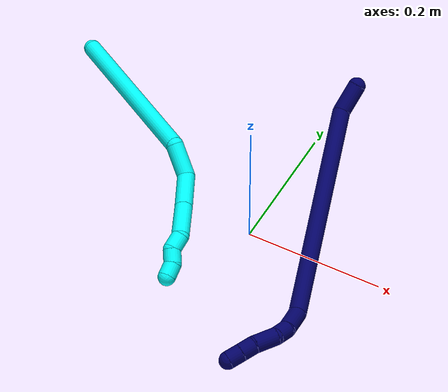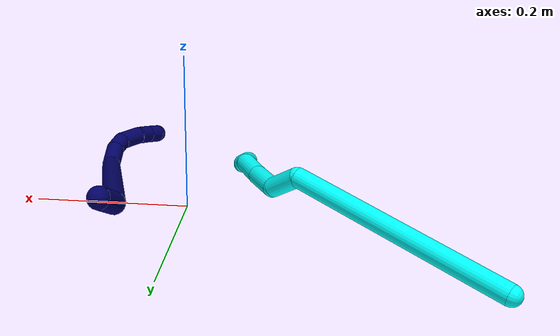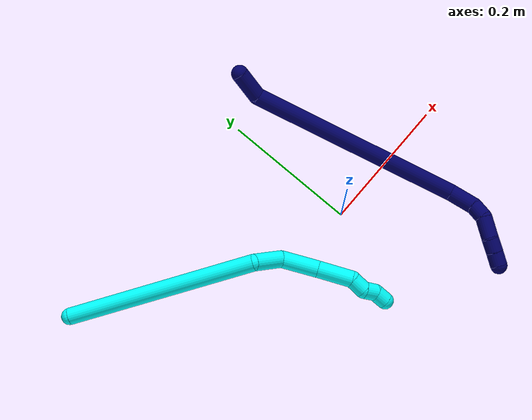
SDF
<sdf version="1.7">
 <world name="default">
  <model name="3">
   <static>0</static>
   <link name="3">
    <collision name="collision-cylinder-e_1_1_4">
     <pose>0.00477 -0.004207 -0.141288 3.11183 0.033732 1.69556</pose>
     <geometry><cylinder><radius>0.0125</radius><length>0.282862</length></cylinder></geometry>
     <surface>
      <friction><ode><mu>1.16</mu><mu2>1.16</mu2><slip1>0</slip1><slip2>0</slip2></ode></friction>
      <contact><ode><kp>1e+06</kp><kd>1</kd><max_vel>0</max_vel><min_depth>0.001</min_depth></ode></contact>
     </surface>
    </collision>
    <visual name="visual-cylinder-e_1_1_4">
     <pose>0.00477 -0.004207 -0.141288 3.11183 0.033732 1.69556</pose>
     <geometry><cylinder><radius>0.0125</radius><length>0.282862</length></cylinder></geometry>
     <material><ambient>0.003922 1 0.996078 1</ambient></material>
    </visual>
    <collision name="collision-cylinder-e_2_4_5">
     <pose>-0.001239 -0.020375 -0.299661 2.53081 -0.477003 -1.31388</pose>
     <geometry><cylinder><radius>0.0125</radius><length>0.046952</length></cylinder></geometry>
     <surface>
      <friction><ode><mu>1.16</mu><mu2>1.16</mu2><slip1>0</slip1><slip2>0</slip2></ode></friction>
      <contact><ode><kp>1e+06</kp><kd>1</kd><max_vel>0</max_vel><min_depth>0.001</min_depth></ode></contact>
     </surface>
    </collision>
    <visual name="visual-cylinder-e_2_4_5">
     <pose>-0.001239 -0.020375 -0.299661 2.53081 -0.477003 -1.31388</pose>
     <geometry><cylinder><radius>0.0125</radius><length>0.046952</length></cylinder></geometry>
     <material><ambient>0.003922 1 0.996078 1</ambient></material>
    </visual>
    <collision name="collision-cylinder-e_3_5_6">
     <pose>-0.006947 -0.047542 -0.338999 2.54212 0.185948 0.586053</pose>
     <geometry><cylinder><radius>0.0125</radius><length>0.05485</length></cylinder></geometry>
     <surface>
      <friction><ode><mu>1.16</mu><mu2>1.16</mu2><slip1>0</slip1><slip2>0</slip2></ode></friction>
      <contact><ode><kp>1e+06</kp><kd>1</kd><max_vel>0</max_vel><min_depth>0.001</min_depth></ode></contact>
     </surface>
    </collision>
    <visual name="visual-cylinder-e_3_5_6">
     <pose>-0.006947 -0.047542 -0.338999 2.54212 0.185948 0.586053</pose>
     <geometry><cylinder><radius>0.0125</radius><length>0.05485</length></cylinder></geometry>
     <material><ambient>0.003922 1 0.996078 1</ambient></material>
    </visual>
    <collision name="collision-cylinder-e_4_6_7">
     <pose>0.003996 -0.076927 -0.382306 2.54894 0.227357 0.715682</pose>
     <geometry><cylinder><radius>0.0125</radius><length>0.052108</length></cylinder></geometry>
     <surface>
      <friction><ode><mu>1.16</mu><mu2>1.16</mu2><slip1>0</slip1><slip2>0</slip2></ode></friction>
      <contact><ode><kp>1e+06</kp><kd>1</kd><max_vel>0</max_vel><min_depth>0.001</min_depth></ode></contact>
     </surface>
    </collision>
    <visual name="visual-cylinder-e_4_6_7">
     <pose>0.003996 -0.076927 -0.382306 2.54894 0.227357 0.715682</pose>
     <geometry><cylinder><radius>0.0125</radius><length>0.052108</length></cylinder></geometry>
     <material><ambient>0.003922 1 0.996078 1</ambient></material>
    </visual>
    <collision name="collision-cylinder-e_5_7_8">
     <pose>0.013233 -0.100929 -0.40828 2.0351 0.297129 0.475519</pose>
     <geometry><cylinder><radius>0.0125</radius><length>0.02298</length></cylinder></geometry>
     <surface>
      <friction><ode><mu>1.16</mu><mu2>1.16</mu2><slip1>0</slip1><slip2>0</slip2></ode></friction>
      <contact><ode><kp>1e+06</kp><kd>1</kd><max_vel>0</max_vel><min_depth>0.001</min_depth></ode></contact>
     </surface>
    </collision>
    <visual name="visual-cylinder-e_5_7_8">
     <pose>0.013233 -0.100929 -0.40828 2.0351 0.297129 0.475519</pose>
     <geometry><cylinder><radius>0.0125</radius><length>0.02298</length></cylinder></geometry>
     <material><ambient>0.003922 1 0.996078 1</ambient></material>
    </visual>
    <collision name="collision-cylinder-e_6_8_9">
     <pose>0.014395 -0.117766 -0.420088 2.34716 -0.220321 -0.51558</pose>
     <geometry><cylinder><radius>0.0125</radius><length>0.020148</length></cylinder></geometry>
     <surface>
      <friction><ode><mu>1.16</mu><mu2>1.16</mu2><slip1>0</slip1><slip2>0</slip2></ode></friction>
      <contact><ode><kp>1e+06</kp><kd>1</kd><max_vel>0</max_vel><min_depth>0.001</min_depth></ode></contact>
     </surface>
    </collision>
    <visual name="visual-cylinder-e_6_8_9">
     <pose>0.014395 -0.117766 -0.420088 2.34716 -0.220321 -0.51558</pose>
     <geometry><cylinder><radius>0.0125</radius><length>0.020148</length></cylinder></geometry>
     <material><ambient>0.003922 1 0.996078 1</ambient></material>
    </visual>
    <collision name="collision-cylinder-e_7_9_2">
     <pose>0.013644 -0.133647 -0.431477 2.04051 0.144822 0.235246</pose>
     <geometry><cylinder><radius>0.0125</radius><length>0.0201</length></cylinder></geometry>
     <surface>
      <friction><ode><mu>1.16</mu><mu2>1.16</mu2><slip1>0</slip1><slip2>0</slip2></ode></friction>
      <contact><ode><kp>1e+06</kp><kd>1</kd><max_vel>0</max_vel><min_depth>0.001</min_depth></ode></contact>
     </surface>
    </collision>
    <visual name="visual-cylinder-e_7_9_2">
     <pose>0.013644 -0.133647 -0.431477 2.04051 0.144822 0.235246</pose>
     <geometry><cylinder><radius>0.0125</radius><length>0.0201</length></cylinder></geometry>
     <material><ambient>0.003922 1 0.996078 1</ambient></material>
    </visual>
    <collision name="collision-sphere-2">
     <pose>0.015094 -0.142515 -0.435978 0 -0 0</pose>
     <geometry><sphere><radius>0.0125</radius></sphere></geometry>
     <surface>
      <friction><ode><mu>1.16</mu><mu2>1.16</mu2><slip1>0</slip1><slip2>0</slip2></ode></friction>
      <contact><ode><kp>1e+06</kp><kd>1</kd><max_vel>0</max_vel><min_depth>0.001</min_depth></ode></contact>
     </surface>
    </collision>
    <visual name="visual-sphere-2">
     <pose>0.015094 -0.142515 -0.435978 0 -0 0</pose>
     <geometry><sphere><radius>0.0125</radius></sphere></geometry>
     <material><ambient>0.003922 1 0.996078 1</ambient></material>
    </visual>
    <collision name="collision-sphere-9">
     <pose>0.012194 -0.12478 -0.426976 0 -0 0</pose>
     <geometry><sphere><radius>0.0125</radius></sphere></geometry>
     <surface>
      <friction><ode><mu>1.16</mu><mu2>1.16</mu2><slip1>0</slip1><slip2>0</slip2></ode></friction>
      <contact><ode><kp>1e+06</kp><kd>1</kd><max_vel>0</max_vel><min_depth>0.001</min_depth></ode></contact>
     </surface>
    </collision>
    <visual name="visual-sphere-9">
     <pose>0.012194 -0.12478 -0.426976 0 -0 0</pose>
     <geometry><sphere><radius>0.0125</radius></sphere></geometry>
     <material><ambient>0.003922 1 0.996078 1</ambient></material>
    </visual>
    <collision name="collision-sphere-4">
     <pose>0.00954 -0.008414 -0.282576 0 -0 0</pose>
     <geometry><sphere><radius>0.0125</radius></sphere></geometry>
     <surface>
      <friction><ode><mu>1.16</mu><mu2>1.16</mu2><slip1>0</slip1><slip2>0</slip2></ode></friction>
      <contact><ode><kp>1e+06</kp><kd>1</kd><max_vel>0</max_vel><min_depth>0.001</min_depth></ode></contact>
     </surface>
    </collision>
    <visual name="visual-sphere-4">
     <pose>0.00954 -0.008414 -0.282576 0 -0 0</pose>
     <geometry><sphere><radius>0.0125</radius></sphere></geometry>
     <material><ambient>0.003922 1 0.996078 1</ambient></material>
    </visual>
    <collision name="collision-sphere-1">
     <geometry><sphere><radius>0.0125</radius></sphere></geometry>
     <surface>
      <friction><ode><mu>1.16</mu><mu2>1.16</mu2><slip1>0</slip1><slip2>0</slip2></ode></friction>
      <contact><ode><kp>1e+06</kp><kd>1</kd><max_vel>0</max_vel><min_depth>0.001</min_depth></ode></contact>
     </surface>
    </collision>
    <visual name="visual-sphere-1">
     <geometry><sphere><radius>0.0125</radius></sphere></geometry>
     <material><ambient>0.003922 1 0.996078 1</ambient></material>
    </visual>
    <collision name="collision-sphere-8">
     <pose>0.016597 -0.110752 -0.4132 0 -0 0</pose>
     <geometry><sphere><radius>0.0125</radius></sphere></geometry>
     <surface>
      <friction><ode><mu>1.16</mu><mu2>1.16</mu2><slip1>0</slip1><slip2>0</slip2></ode></friction>
      <contact><ode><kp>1e+06</kp><kd>1</kd><max_vel>0</max_vel><min_depth>0.001</min_depth></ode></contact>
     </surface>
    </collision>
    <visual name="visual-sphere-8">
     <pose>0.016597 -0.110752 -0.4132 0 -0 0</pose>
     <geometry><sphere><radius>0.0125</radius></sphere></geometry>
     <material><ambient>0.003922 1 0.996078 1</ambient></material>
    </visual>
    <collision name="collision-sphere-5">
     <pose>-0.012017 -0.032336 -0.316746 0 -0 0</pose>
     <geometry><sphere><radius>0.0125</radius></sphere></geometry>
     <surface>
      <friction><ode><mu>1.16</mu><mu2>1.16</mu2><slip1>0</slip1><slip2>0</slip2></ode></friction>
      <contact><ode><kp>1e+06</kp><kd>1</kd><max_vel>0</max_vel><min_depth>0.001</min_depth></ode></contact>
     </surface>
    </collision>
    <visual name="visual-sphere-5">
     <pose>-0.012017 -0.032336 -0.316746 0 -0 0</pose>
     <geometry><sphere><radius>0.0125</radius></sphere></geometry>
     <material><ambient>0.003922 1 0.996078 1</ambient></material>
    </visual>
    <collision name="collision-sphere-6">
     <pose>-0.001877 -0.062749 -0.361251 0 -0 0</pose>
     <geometry><sphere><radius>0.0125</radius></sphere></geometry>
     <surface>
      <friction><ode><mu>1.16</mu><mu2>1.16</mu2><slip1>0</slip1><slip2>0</slip2></ode></friction>
      <contact><ode><kp>1e+06</kp><kd>1</kd><max_vel>0</max_vel><min_depth>0.001</min_depth></ode></contact>
     </surface>
    </collision>
    <visual name="visual-sphere-6">
     <pose>-0.001877 -0.062749 -0.361251 0 -0 0</pose>
     <geometry><sphere><radius>0.0125</radius></sphere></geometry>
     <material><ambient>0.003922 1 0.996078 1</ambient></material>
    </visual>
    <collision name="collision-sphere-7">
     <pose>0.009869 -0.091106 -0.40336 0 -0 0</pose>
     <geometry><sphere><radius>0.0125</radius></sphere></geometry>
     <surface>
      <friction><ode><mu>1.16</mu><mu2>1.16</mu2><slip1>0</slip1><slip2>0</slip2></ode></friction>
      <contact><ode><kp>1e+06</kp><kd>1</kd><max_vel>0</max_vel><min_depth>0.001</min_depth></ode></contact>
     </surface>
    </collision>
    <visual name="visual-sphere-7">
     <pose>0.009869 -0.091106 -0.40336 0 -0 0</pose>
     <geometry><sphere><radius>0.0125</radius></sphere></geometry>
     <material><ambient>0.003922 1 0.996078 1</ambient></material>
    </visual>
    <inertial>
     <pose>0.003973 -0.032282 -0.238138 0 -0 0</pose>
     <mass>0.5</mass>
     <inertia>
      <ixx>0.001685</ixx>
      <ixy>0</ixy>
      <ixz>0</ixz>
      <iyy>0.002098</iyy>
      <iyz>0</iyz>
      <izz>-1.8e-05</izz>
     </inertia>
    </inertial>
   </link>
   <pose>-0.371182 0.203934 0.01195 1.84983 -0.822362 -2.34022</pose>
  </model>
  <model name="7">
   <static>0</static>
   <link name="7">
    <collision name="collision-cylinder-e_1_1_4">
     <pose>-0.001095 -0.020803 -0.003788 1.75092 -0.051739 -0.062006</pose>
     <geometry><cylinder><radius>0.0125</radius><length>0.042348</length></cylinder></geometry>
     <surface>
      <friction><ode><mu>1.16</mu><mu2>1.16</mu2><slip1>0</slip1><slip2>0</slip2></ode></friction>
      <contact><ode><kp>1e+06</kp><kd>1</kd><max_vel>0</max_vel><min_depth>0.001</min_depth></ode></contact>
     </surface>
    </collision>
    <visual name="visual-cylinder-e_1_1_4">
     <pose>-0.001095 -0.020803 -0.003788 1.75092 -0.051739 -0.062006</pose>
     <geometry><cylinder><radius>0.0125</radius><length>0.042348</length></cylinder></geometry>
     <material><ambient>0.003922 0 0.403922 1</ambient></material>
    </visual>
    <collision name="collision-cylinder-e_2_4_5">
     <pose>0.044744 -0.193185 0.016594 1.41267 0.296744 0.25368</pose>
     <geometry><cylinder><radius>0.0125</radius><length>0.321017</length></cylinder></geometry>
     <surface>
      <friction><ode><mu>1.16</mu><mu2>1.16</mu2><slip1>0</slip1><slip2>0</slip2></ode></friction>
      <contact><ode><kp>1e+06</kp><kd>1</kd><max_vel>0</max_vel><min_depth>0.001</min_depth></ode></contact>
     </surface>
    </collision>
    <visual name="visual-cylinder-e_2_4_5">
     <pose>0.044744 -0.193185 0.016594 1.41267 0.296744 0.25368</pose>
     <geometry><cylinder><radius>0.0125</radius><length>0.321017</length></cylinder></geometry>
     <material><ambient>0.003922 0 0.403922 1</ambient></material>
    </visual>
    <collision name="collision-cylinder-e_3_5_6">
     <pose>0.092367 -0.360979 0.052495 0.944522 0.034404 0.017575</pose>
     <geometry><cylinder><radius>0.0125</radius><length>0.040053</length></cylinder></geometry>
     <surface>
      <friction><ode><mu>1.16</mu><mu2>1.16</mu2><slip1>0</slip1><slip2>0</slip2></ode></friction>
      <contact><ode><kp>1e+06</kp><kd>1</kd><max_vel>0</max_vel><min_depth>0.001</min_depth></ode></contact>
     </surface>
    </collision>
    <visual name="visual-cylinder-e_3_5_6">
     <pose>0.092367 -0.360979 0.052495 0.944522 0.034404 0.017575</pose>
     <geometry><cylinder><radius>0.0125</radius><length>0.040053</length></cylinder></geometry>
     <material><ambient>0.003922 0 0.403922 1</ambient></material>
    </visual>
    <collision name="collision-cylinder-e_4_6_7">
     <pose>0.090063 -0.386324 0.069982 1.00826 -0.270505 -0.149867</pose>
     <geometry><cylinder><radius>0.0125</radius><length>0.022396</length></cylinder></geometry>
     <surface>
      <friction><ode><mu>1.16</mu><mu2>1.16</mu2><slip1>0</slip1><slip2>0</slip2></ode></friction>
      <contact><ode><kp>1e+06</kp><kd>1</kd><max_vel>0</max_vel><min_depth>0.001</min_depth></ode></contact>
     </surface>
    </collision>
    <visual name="visual-cylinder-e_4_6_7">
     <pose>0.090063 -0.386324 0.069982 1.00826 -0.270505 -0.149867</pose>
     <geometry><cylinder><radius>0.0125</radius><length>0.022396</length></cylinder></geometry>
     <material><ambient>0.003922 0 0.403922 1</ambient></material>
    </visual>
    <collision name="collision-cylinder-e_5_7_8">
     <pose>0.077625 -0.408478 0.079153 1.3143 -0.611679 -0.477919</pose>
     <geometry><cylinder><radius>0.0125</radius><length>0.032899</length></cylinder></geometry>
     <surface>
      <friction><ode><mu>1.16</mu><mu2>1.16</mu2><slip1>0</slip1><slip2>0</slip2></ode></friction>
      <contact><ode><kp>1e+06</kp><kd>1</kd><max_vel>0</max_vel><min_depth>0.001</min_depth></ode></contact>
     </surface>
    </collision>
    <visual name="visual-cylinder-e_5_7_8">
     <pose>0.077625 -0.408478 0.079153 1.3143 -0.611679 -0.477919</pose>
     <geometry><cylinder><radius>0.0125</radius><length>0.032899</length></cylinder></geometry>
     <material><ambient>0.003922 0 0.403922 1</ambient></material>
    </visual>
    <collision name="collision-cylinder-e_6_8_9">
     <pose>0.063188 -0.430566 0.083074 1.51524 -0.502778 -0.476638</pose>
     <geometry><cylinder><radius>0.0125</radius><length>0.020715</length></cylinder></geometry>
     <surface>
      <friction><ode><mu>1.16</mu><mu2>1.16</mu2><slip1>0</slip1><slip2>0</slip2></ode></friction>
      <contact><ode><kp>1e+06</kp><kd>1</kd><max_vel>0</max_vel><min_depth>0.001</min_depth></ode></contact>
     </surface>
    </collision>
    <visual name="visual-cylinder-e_6_8_9">
     <pose>0.063188 -0.430566 0.083074 1.51524 -0.502778 -0.476638</pose>
     <geometry><cylinder><radius>0.0125</radius><length>0.020715</length></cylinder></geometry>
     <material><ambient>0.003922 0 0.403922 1</ambient></material>
    </visual>
    <collision name="collision-cylinder-e_7_9_2">
     <pose>0.053107 -0.44856 0.083894 1.53543 -0.517739 -0.500498</pose>
     <geometry><cylinder><radius>0.0125</radius><length>0.020572</length></cylinder></geometry>
     <surface>
      <friction><ode><mu>1.16</mu><mu2>1.16</mu2><slip1>0</slip1><slip2>0</slip2></ode></friction>
      <contact><ode><kp>1e+06</kp><kd>1</kd><max_vel>0</max_vel><min_depth>0.001</min_depth></ode></contact>
     </surface>
    </collision>
    <visual name="visual-cylinder-e_7_9_2">
     <pose>0.053107 -0.44856 0.083894 1.53543 -0.517739 -0.500498</pose>
     <geometry><cylinder><radius>0.0125</radius><length>0.020572</length></cylinder></geometry>
     <material><ambient>0.003922 0 0.403922 1</ambient></material>
    </visual>
    <collision name="collision-sphere-2">
     <pose>0.048016 -0.457493 0.08421 0 -0 0</pose>
     <geometry><sphere><radius>0.0125</radius></sphere></geometry>
     <surface>
      <friction><ode><mu>1.16</mu><mu2>1.16</mu2><slip1>0</slip1><slip2>0</slip2></ode></friction>
      <contact><ode><kp>1e+06</kp><kd>1</kd><max_vel>0</max_vel><min_depth>0.001</min_depth></ode></contact>
     </surface>
    </collision>
    <visual name="visual-sphere-2">
     <pose>0.048016 -0.457493 0.08421 0 -0 0</pose>
     <geometry><sphere><radius>0.0125</radius></sphere></geometry>
     <material><ambient>0.003922 0 0.403922 1</ambient></material>
    </visual>
    <collision name="collision-sphere-9">
     <pose>0.058197 -0.439628 0.083578 0 -0 0</pose>
     <geometry><sphere><radius>0.0125</radius></sphere></geometry>
     <surface>
      <friction><ode><mu>1.16</mu><mu2>1.16</mu2><slip1>0</slip1><slip2>0</slip2></ode></friction>
      <contact><ode><kp>1e+06</kp><kd>1</kd><max_vel>0</max_vel><min_depth>0.001</min_depth></ode></contact>
     </surface>
    </collision>
    <visual name="visual-sphere-9">
     <pose>0.058197 -0.439628 0.083578 0 -0 0</pose>
     <geometry><sphere><radius>0.0125</radius></sphere></geometry>
     <material><ambient>0.003922 0 0.403922 1</ambient></material>
    </visual>
    <collision name="collision-sphere-4">
     <pose>-0.00219 -0.041607 -0.007577 0 -0 0</pose>
     <geometry><sphere><radius>0.0125</radius></sphere></geometry>
     <surface>
      <friction><ode><mu>1.16</mu><mu2>1.16</mu2><slip1>0</slip1><slip2>0</slip2></ode></friction>
      <contact><ode><kp>1e+06</kp><kd>1</kd><max_vel>0</max_vel><min_depth>0.001</min_depth></ode></contact>
     </surface>
    </collision>
    <visual name="visual-sphere-4">
     <pose>-0.00219 -0.041607 -0.007577 0 -0 0</pose>
     <geometry><sphere><radius>0.0125</radius></sphere></geometry>
     <material><ambient>0.003922 0 0.403922 1</ambient></material>
    </visual>
    <collision name="collision-sphere-1">
     <geometry><sphere><radius>0.0125</radius></sphere></geometry>
     <surface>
      <friction><ode><mu>1.16</mu><mu2>1.16</mu2><slip1>0</slip1><slip2>0</slip2></ode></friction>
      <contact><ode><kp>1e+06</kp><kd>1</kd><max_vel>0</max_vel><min_depth>0.001</min_depth></ode></contact>
     </surface>
    </collision>
    <visual name="visual-sphere-1">
     <geometry><sphere><radius>0.0125</radius></sphere></geometry>
     <material><ambient>0.003922 0 0.403922 1</ambient></material>
    </visual>
    <collision name="collision-sphere-8">
     <pose>0.068179 -0.421504 0.08257 0 -0 0</pose>
     <geometry><sphere><radius>0.0125</radius></sphere></geometry>
     <surface>
      <friction><ode><mu>1.16</mu><mu2>1.16</mu2><slip1>0</slip1><slip2>0</slip2></ode></friction>
      <contact><ode><kp>1e+06</kp><kd>1</kd><max_vel>0</max_vel><min_depth>0.001</min_depth></ode></contact>
     </surface>
    </collision>
    <visual name="visual-sphere-8">
     <pose>0.068179 -0.421504 0.08257 0 -0 0</pose>
     <geometry><sphere><radius>0.0125</radius></sphere></geometry>
     <material><ambient>0.003922 0 0.403922 1</ambient></material>
    </visual>
    <collision name="collision-sphere-5">
     <pose>0.091678 -0.344763 0.040764 0 -0 0</pose>
     <geometry><sphere><radius>0.0125</radius></sphere></geometry>
     <surface>
      <friction><ode><mu>1.16</mu><mu2>1.16</mu2><slip1>0</slip1><slip2>0</slip2></ode></friction>
      <contact><ode><kp>1e+06</kp><kd>1</kd><max_vel>0</max_vel><min_depth>0.001</min_depth></ode></contact>
     </surface>
    </collision>
    <visual name="visual-sphere-5">
     <pose>0.091678 -0.344763 0.040764 0 -0 0</pose>
     <geometry><sphere><radius>0.0125</radius></sphere></geometry>
     <material><ambient>0.003922 0 0.403922 1</ambient></material>
    </visual>
    <collision name="collision-sphere-6">
     <pose>0.093056 -0.377195 0.064227 0 -0 0</pose>
     <geometry><sphere><radius>0.0125</radius></sphere></geometry>
     <surface>
      <friction><ode><mu>1.16</mu><mu2>1.16</mu2><slip1>0</slip1><slip2>0</slip2></ode></friction>
      <contact><ode><kp>1e+06</kp><kd>1</kd><max_vel>0</max_vel><min_depth>0.001</min_depth></ode></contact>
     </surface>
    </collision>
    <visual name="visual-sphere-6">
     <pose>0.093056 -0.377195 0.064227 0 -0 0</pose>
     <geometry><sphere><radius>0.0125</radius></sphere></geometry>
     <material><ambient>0.003922 0 0.403922 1</ambient></material>
    </visual>
    <collision name="collision-sphere-7">
     <pose>0.087071 -0.395452 0.075737 0 -0 0</pose>
     <geometry><sphere><radius>0.0125</radius></sphere></geometry>
     <surface>
      <friction><ode><mu>1.16</mu><mu2>1.16</mu2><slip1>0</slip1><slip2>0</slip2></ode></friction>
      <contact><ode><kp>1e+06</kp><kd>1</kd><max_vel>0</max_vel><min_depth>0.001</min_depth></ode></contact>
     </surface>
    </collision>
    <visual name="visual-sphere-7">
     <pose>0.087071 -0.395452 0.075737 0 -0 0</pose>
     <geometry><sphere><radius>0.0125</radius></sphere></geometry>
     <material><ambient>0.003922 0 0.403922 1</ambient></material>
    </visual>
    <inertial>
     <pose>0.049978 -0.235185 0.029774 0 -0 0</pose>
     <mass>0.5</mass>
     <inertia>
      <ixx>0.00325</ixx>
      <ixy>0</ixy>
      <ixz>0</ixz>
      <iyy>0.001255</iyy>
      <iyz>0</iyz>
      <izz>0.001838</izz>
     </inertia>
    </inertial>
   </link>
   <pose>0.046079 0.231641 0.1098 0.363803 0.159413 0.016943</pose>
  </model>
 </world>
</sdf>
